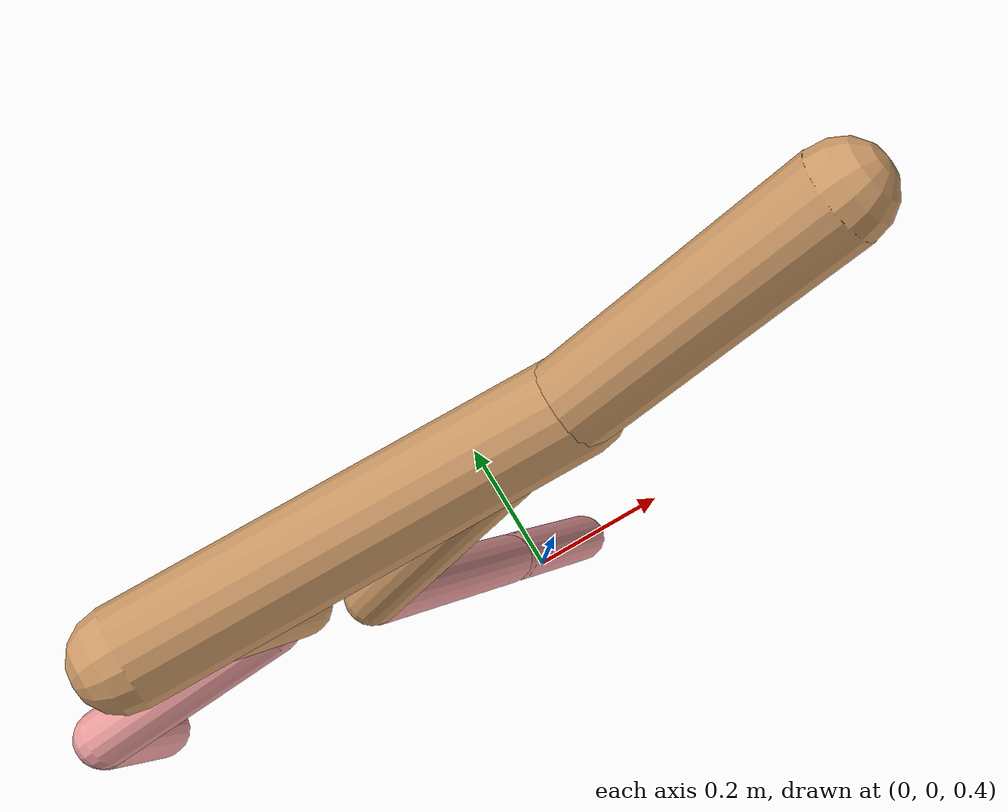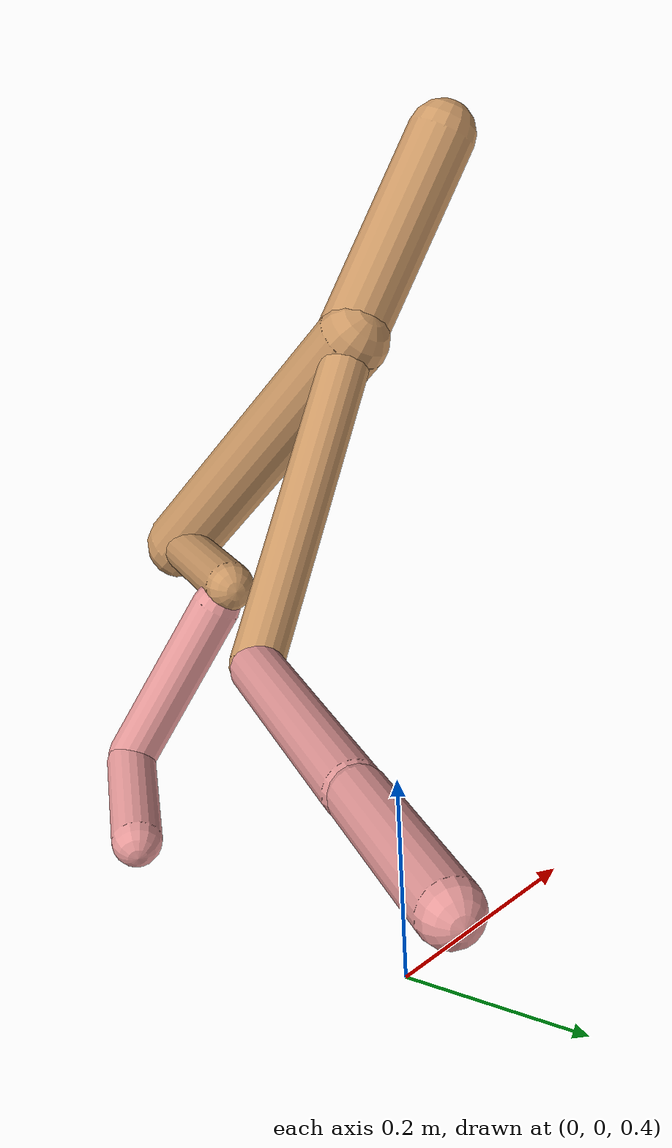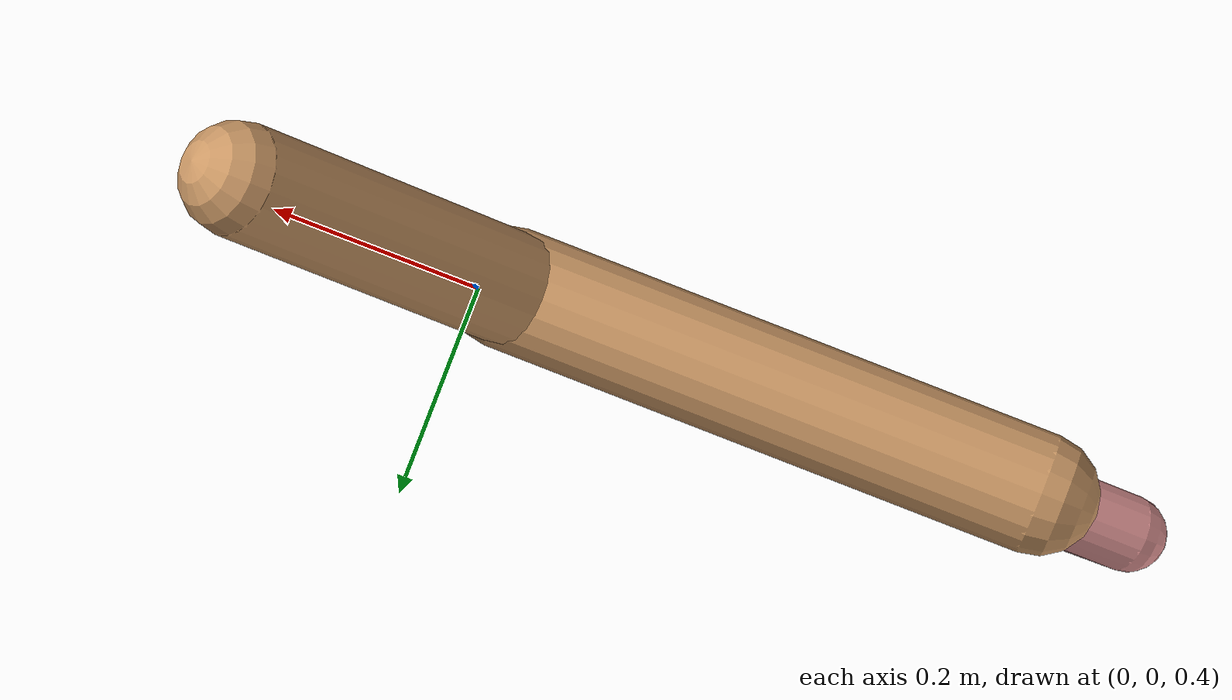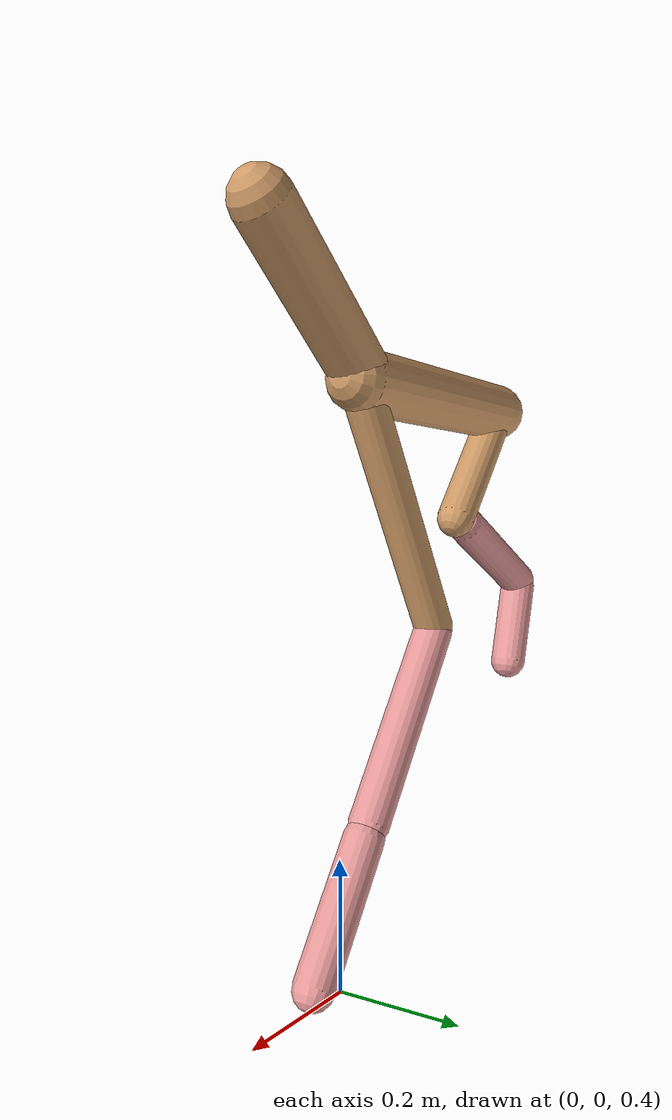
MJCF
<mujoco model="cheetah">
  <compiler angle="radian" coordinate="local" inertiafromgeom="true" settotalmass="14" />
  <default>
    <joint armature=".1" damping=".01" limited="true" solimplimit="0 .8 .03" solreflimit=".02 1" stiffness="8" />
    <geom conaffinity="0" condim="3" contype="1" friction="0.8 .1 .1" rgba="0.8 0.6 .4 1" solimp="0.0 0.8 0.01" solref="0.02 1" />
    <motor ctrllimited="true" ctrlrange="-1 1" />
  </default>
  <size nstack="300000" nuser_geom="1" />
  <option gravity="0 0 -9.81" timestep="0.01" />
  <worldbody>
    <body name="torso" pos="0.0 0.0 1.3058411618866193">
      <joint armature="0" axis="1 0 0" damping="0" limited="false" name="ignorex" pos="0 0 0" stiffness="0" type="slide" />
      <joint armature="0" axis="0 0 1" damping="0" limited="false" name="ignorez" pos="0 0 0" stiffness="0" type="slide" />
      <joint armature="0" axis="0 1 0" damping="0" limited="false" name="ignorey" pos="0 0 0" stiffness="0" type="hinge" />
      <geom fromto="-0.5 0.0 0.0 -0.05134529022085643 0.0 0.0" name="torso" size="0.04890958374644434" type="capsule" />
      <geom axisangle="0 1 0 .87" name="head" pos="0.048654709779143546 0.0 0.1" size="0.045360171021371645 0.15" type="capsule" />

      <body name="bthigh" pos="-.5 0 0">
        <joint axis="0 1 0" damping="6" name="bthigh" pos="0 0 0" range="-.52 1.05" stiffness="240" type="hinge" />
        <geom axisangle="0 1 0 -3.8" name="bthigh" pos="0.08226935572064993 0.0 -0.10695016243684491" size="0.0322 0.11591958118856116" type="capsule" />
        <body name="bshin" pos="0.12453871144129985 0.0 -0.2039003248736898">
          <joint axis="0 1 0" damping="4.5" name="bshin" pos="0 0 0" range="-.785 .785" stiffness="180" type="hinge" />
          <geom axisangle="0 1 0 -2.03" name="bshin" pos="-0.11309277519591412 0.0 -0.05654638759795706" rgba="0.9 0.6 0.6 1" size="0.0322 0.11991680812609776" type="capsule" />
          <body name="bfoot" pos="-0.22618555039182825 0.0 -0.11309277519591412">
            <joint axis="0 1 0" damping="3" name="bfoot" pos="0 0 0" range="-.4 .785" stiffness="120" type="hinge" />
            <geom axisangle="0 1 0 -.27" name="bfoot" pos="0.0244297653163082 0.0 -0.07898957452272987" rgba="0.9 0.6 0.6 1" size="0.0322 0.07514786642568794" type="capsule" />
            <inertial mass="10" />
          </body>
        </body>
      </body>
      <body name="fthigh" pos="-0.05134529022085643 0.0 0.0">
        <joint axis="0 1 0" damping="4.5" name="fthigh" pos="0 0 0" range="-1.5 0.8" stiffness="180" type="hinge" />
        <geom axisangle="0 1 0 .52" name="fthigh" pos="-0.11246898786968669 0.0 -0.19280397920517717" size="0.03267156157094538 0.21728543360974936" type="capsule" />
        <body name="fshin" pos="-0.22493797573937338 0.0 -0.38560795841035433">
          <joint axis="0 1 0" damping="3" name="fshin" pos="0 0 0" range="-1.2 1.1" stiffness="120" type="hinge" />
          <geom axisangle="0 1 0 -.6" name="fshin" pos="0.10433024414849254 0.0 -0.14445726112868199" rgba="0.9 0.6 0.6 1" size="0.03267156157094538 0.17317485686190548" type="capsule" />
          <body name="ffoot" pos="0.20866048829698508 0.0 -0.28891452225736397">
            <joint axis="0 1 0" damping="1.5" name="ffoot" pos="0 0 0" range="-3.1 -0.3" stiffness="60" type="hinge" />
            <geom axisangle="0 1 0 -.6" name="ffoot" pos="0.06898841476927466 0.0 -0.10731531186331615" rgba="0.9 0.6 0.6 1" size="0.03267156157094538 0.11436075453144703" type="capsule" />
            <inertial mass="10" />
          </body>
        </body>
      </body>
    </body>
  </worldbody>
  <actuator>
    <motor gear="120" joint="bthigh" name="bthigh" />
    <motor gear="90" joint="bshin" name="bshin" />
    <motor gear="60" joint="bfoot" name="bfoot" />
    <motor gear="120" joint="fthigh" name="fthigh" />
    <motor gear="60" joint="fshin" name="fshin" />
    <motor gear="30" joint="ffoot" name="ffoot" />
  </actuator>
</mujoco>
